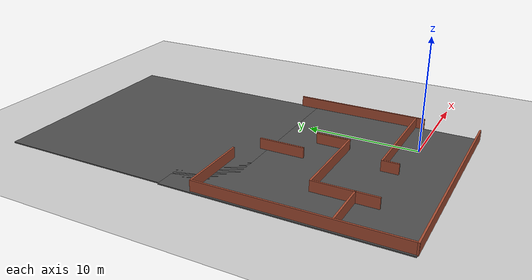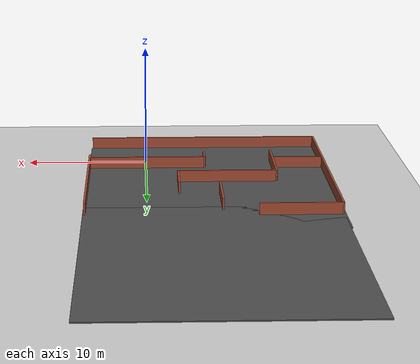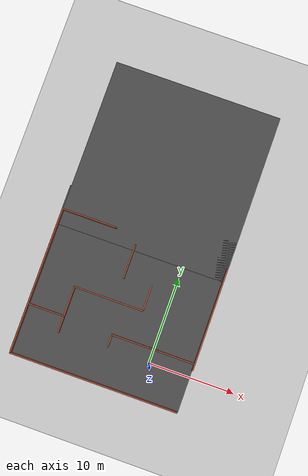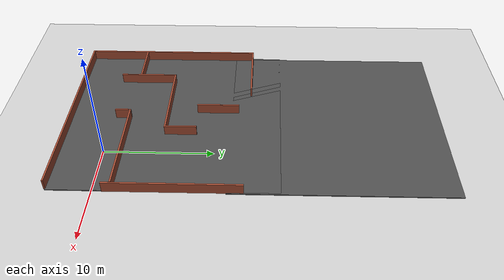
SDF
<sdf version="1.6">
 <world name="default">
  <light name="sun" type="directional">
   <pose>0 0 10 0 -0 0</pose>
   <diffuse>0.8 0.8 0.8 1</diffuse>
   <specular>0.2 0.2 0.2 1</specular>
   <attenuation>
    <range>1000</range>
    <constant>0.9</constant>
    <linear>0.01</linear>
    <quadratic>0.001</quadratic>
   </attenuation>
   <direction>-0.5 0.1 -0.9</direction>
  </light>
  <scene>
   <ambient>1 1 1 1</ambient>
   <background>1 1 1 1</background>
   <shadows>1</shadows>
   <sky><clouds><speed>12</speed></clouds></sky>
  </scene>
  <model name="ground_plane">
   <static>1</static>
   <link name="link">
    <collision name="collision">
     <geometry><plane><normal>0 0 1</normal><size>100 100</size></plane></geometry>
     <surface><friction><ode><mu>100</mu><mu2>50</mu2></ode></friction></surface>
    </collision>
    <visual name="visual">
     <cast_shadows>0</cast_shadows>
     <geometry><plane><normal>0 0 1</normal><size>100 100</size></plane></geometry>
     <material>
      <script><uri>file://media/materials/scripts/gazebo.material</uri><name>Gazebo/Grey</name></script>
     </material>
    </visual>
   </link>
  </model>
  <gravity>0 0 -9.8</gravity>
  <magnetic_field>6e-06 2.3e-05 -4.2e-05</magnetic_field>
  <atmosphere type="adiabatic"/>
  <physics name="default_physics" default="0" type="ode">
   <max_step_size>0.001</max_step_size>
   <real_time_factor>1</real_time_factor>
   <real_time_update_rate>1000</real_time_update_rate>
  </physics>
  <scene><ambient>0.4 0.4 0.4 1</ambient><background>0.7 0.7 0.7 1</background><shadows>1</shadows></scene>
  <audio><device>default</device></audio>
  <spherical_coordinates>
   <surface_model>EARTH_WGS84</surface_model>
   <latitude_deg>0</latitude_deg>
   <longitude_deg>0</longitude_deg>
   <elevation>0</elevation>
   <heading_deg>0</heading_deg>
  </spherical_coordinates>
  <model name="asphalt_plane">
   <static>1</static>
   <link name="link">
    <collision name="collision"><geometry><box><size>20 20 0.1</size></box></geometry></collision>
    <visual name="visual">
     <cast_shadows>0</cast_shadows>
     <geometry><box><size>20 20 0.1</size></box></geometry>
     <material>
      <script>
       <uri>model://asphalt_plane/materials/scripts</uri>
       <uri>model://asphalt_plane/materials/textures</uri>
       <name>vrc/asphalt</name>
      </script>
     </material>
    </visual>
   </link>
   <pose>-5.1949 5.99083 0 0 -0 0</pose>
  </model>
  <model name="walllls">
   <pose>-5.094 5.923 0 0 -0 0</pose>
   <link name="Wall_12">
    <collision name="Wall_12_Collision">
     <geometry><box><size>1.5 0.15 1</size></box></geometry>
     <pose>0 0 0.5 0 -0 0</pose>
    </collision>
    <visual name="Wall_12_Visual">
     <pose>0 0 0.5 0 -0 0</pose>
     <geometry><box><size>1.5 0.15 1</size></box></geometry>
     <material>
      <script><uri>file://media/materials/scripts/gazebo.material</uri><name>Gazebo/Bricks</name></script>
      <ambient>1 1 1 1</ambient>
     </material>
     <meta><layer>0</layer></meta>
    </visual>
    <pose>0.123 -4.947 0 0 -0 1.5708</pose>
   </link>
   <link name="Wall_13">
    <collision name="Wall_13_Collision">
     <geometry><box><size>9.75 0.15 1</size></box></geometry>
     <pose>0 0 0.5 0 -0 0</pose>
    </collision>
    <visual name="Wall_13_Visual">
     <pose>0 0 0.5 0 -0 0</pose>
     <geometry><box><size>9.75 0.15 1</size></box></geometry>
     <material>
      <script><uri>file://media/materials/scripts/gazebo.material</uri><name>Gazebo/Bricks</name></script>
      <ambient>1 1 1 1</ambient>
     </material>
     <meta><layer>0</layer></meta>
    </visual>
    <pose>4.923 -4.272 0 0 -0 0</pose>
   </link>
   <link name="Wall_17">
    <collision name="Wall_17_Collision">
     <geometry><box><size>5.5 0.15 1</size></box></geometry>
     <pose>0 0 0.5 0 -0 0</pose>
    </collision>
    <visual name="Wall_17_Visual">
     <pose>0 0 0.5 0 -0 0</pose>
     <geometry><box><size>5.5 0.15 1</size></box></geometry>
     <material>
      <script><uri>file://media/materials/scripts/gazebo.material</uri><name>Gazebo/Bricks</name></script>
      <ambient>1 1 1 1</ambient>
     </material>
     <meta><layer>0</layer></meta>
    </visual>
    <pose>-5.623 -3.32 0 0 -0 1.5708</pose>
   </link>
   <link name="Wall_18">
    <collision name="Wall_18_Collision">
     <geometry><box><size>8.25 0.15 1</size></box></geometry>
     <pose>0 0 0.5 0 -0 0</pose>
    </collision>
    <visual name="Wall_18_Visual">
     <pose>0 0 0.5 0 -0 0</pose>
     <geometry><box><size>8.25 0.15 1</size></box></geometry>
     <material>
      <script><uri>file://media/materials/scripts/gazebo.material</uri><name>Gazebo/Bricks</name></script>
      <ambient>1 1 1 1</ambient>
     </material>
     <meta><layer>0</layer></meta>
    </visual>
    <pose>-1.573 -0.645 0 0 -0 0</pose>
   </link>
   <link name="Wall_19">
    <collision name="Wall_19_Collision">
     <geometry><box><size>3 0.15 1</size></box></geometry>
     <pose>0 0 0.5 0 -0 0</pose>
    </collision>
    <visual name="Wall_19_Visual">
     <pose>0 0 0.5 0 -0 0</pose>
     <geometry><box><size>3 0.15 1</size></box></geometry>
     <material>
      <script><uri>file://media/materials/scripts/gazebo.material</uri><name>Gazebo/Bricks</name></script>
      <ambient>1 1 1 1</ambient>
     </material>
     <meta><layer>0</layer></meta>
    </visual>
    <pose>2.477 0.78 0 0 -0 1.5708</pose>
   </link>
   <link name="Wall_21">
    <collision name="Wall_21_Collision">
     <geometry><box><size>4 0.15 1</size></box></geometry>
     <pose>0 0 0.5 0 -0 0</pose>
    </collision>
    <visual name="Wall_21_Visual">
     <pose>0 0 0.5 0 -0 0</pose>
     <geometry><box><size>4 0.15 1</size></box></geometry>
     <material>
      <script><uri>file://media/materials/scripts/gazebo.material</uri><name>Gazebo/Bricks</name></script>
      <ambient>1 1 1 1</ambient>
     </material>
     <meta><layer>0</layer></meta>
    </visual>
    <pose>-0.782 4.07 0 0 -0 1.5708</pose>
   </link>
   <link name="Wall_23">
    <collision name="Wall_23_Collision">
     <geometry><box><size>4.25 0.15 1</size></box></geometry>
     <pose>0 0 0.5 0 -0 0</pose>
    </collision>
    <visual name="Wall_23_Visual">
     <pose>0 0 0.5 0 -0 0</pose>
     <geometry><box><size>4.25 0.15 1</size></box></geometry>
     <material>
      <script><uri>file://media/materials/scripts/gazebo.material</uri><name>Gazebo/Bricks</name></script>
      <ambient>1 1 1 1</ambient>
     </material>
     <meta><layer>0</layer></meta>
    </visual>
    <pose>-7.673 -4.133 0 0 -0 3.14159</pose>
   </link>
   <static>1</static>
  </model>
  <model name="asphalt_plane_0">
   <static>1</static>
   <link name="link">
    <collision name="collision"><geometry><box><size>20 20 0.1</size></box></geometry></collision>
    <visual name="visual">
     <cast_shadows>0</cast_shadows>
     <geometry><box><size>20 20 0.1</size></box></geometry>
     <material>
      <script>
       <uri>model://asphalt_plane/materials/scripts</uri>
       <uri>model://asphalt_plane/materials/textures</uri>
       <name>vrc/asphalt</name>
      </script>
     </material>
    </visual>
   </link>
   <pose>-5.06274 21.3332 0 0 -0 0</pose>
  </model>
  <model name="boundary">
   <pose>-5.088 4.541 0 0 -0 0</pose>
   <link name="Wall_28">
    <collision name="Wall_28_Collision">
     <geometry><box><size>19.75 0.15 1</size></box></geometry>
     <pose>0 0 0.5 0 -0 0</pose>
    </collision>
    <visual name="Wall_28_Visual">
     <pose>0 0 0.5 0 -0 0</pose>
     <geometry><box><size>19.75 0.15 1</size></box></geometry>
     <material>
      <script><uri>file://media/materials/scripts/gazebo.material</uri><name>Gazebo/Bricks</name></script>
      <ambient>1 1 1 1</ambient>
     </material>
     <meta><layer>0</layer></meta>
    </visual>
    <pose>-0.076 -8.55 0 0 -0 0</pose>
   </link>
   <link name="Wall_30">
    <collision name="Wall_30_Collision">
     <geometry><box><size>17.25 0.15 1</size></box></geometry>
     <pose>0 0 0.5 0 -0 0</pose>
    </collision>
    <visual name="Wall_30_Visual">
     <pose>0 0 0.5 0 -0 0</pose>
     <geometry><box><size>17.25 0.15 1</size></box></geometry>
     <material>
      <script><uri>file://media/materials/scripts/gazebo.material</uri><name>Gazebo/Bricks</name></script>
      <ambient>1 1 1 1</ambient>
     </material>
     <meta><layer>0</layer></meta>
    </visual>
    <pose>-9.876 0 0 0 -0 1.5708</pose>
   </link>
   <link name="Wall_31">
    <collision name="Wall_31_Collision">
     <geometry><box><size>6.5 0.15 1</size></box></geometry>
     <pose>0 0 0.5 0 -0 0</pose>
    </collision>
    <visual name="Wall_31_Visual">
     <pose>0 0 0.5 0 -0 0</pose>
     <geometry><box><size>6.5 0.15 1</size></box></geometry>
     <material>
      <script><uri>file://media/materials/scripts/gazebo.material</uri><name>Gazebo/Bricks</name></script>
      <ambient>1 1 1 1</ambient>
     </material>
     <meta><layer>0</layer></meta>
    </visual>
    <pose>-6.701 8.55 0 0 -0 0</pose>
   </link>
   <link name="Wall_36">
    <collision name="Wall_36_Collision">
     <geometry><box><size>12 0.15 1</size></box></geometry>
     <pose>0 0 0.5 0 -0 0</pose>
    </collision>
    <visual name="Wall_36_Visual">
     <pose>0 0 0.5 0 -0 0</pose>
     <geometry><box><size>12 0.15 1</size></box></geometry>
     <material>
      <script><uri>file://media/materials/scripts/gazebo.material</uri><name>Gazebo/Bricks</name></script>
      <ambient>1 1 1 1</ambient>
     </material>
     <meta><layer>0</layer></meta>
    </visual>
    <pose>9.876 2.314 0 0 -0 1.5708</pose>
   </link>
   <static>1</static>
  </model>
 </world>
</sdf>
